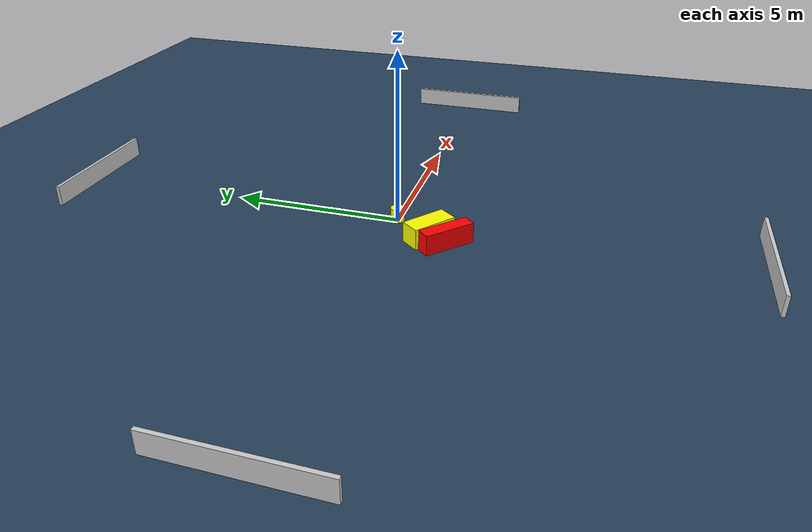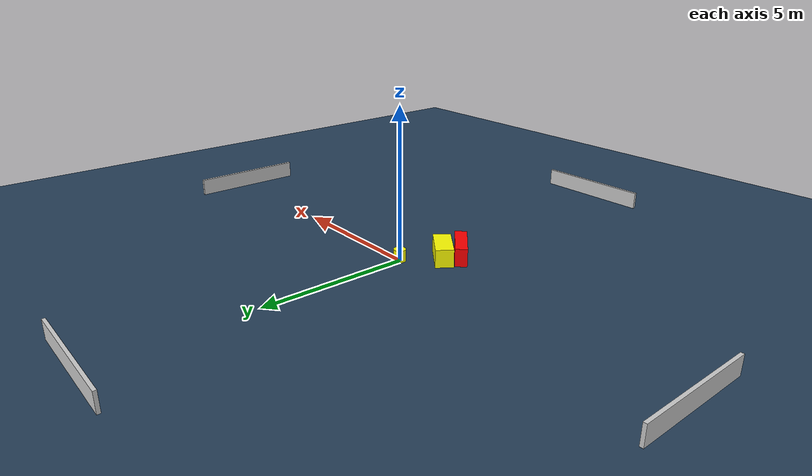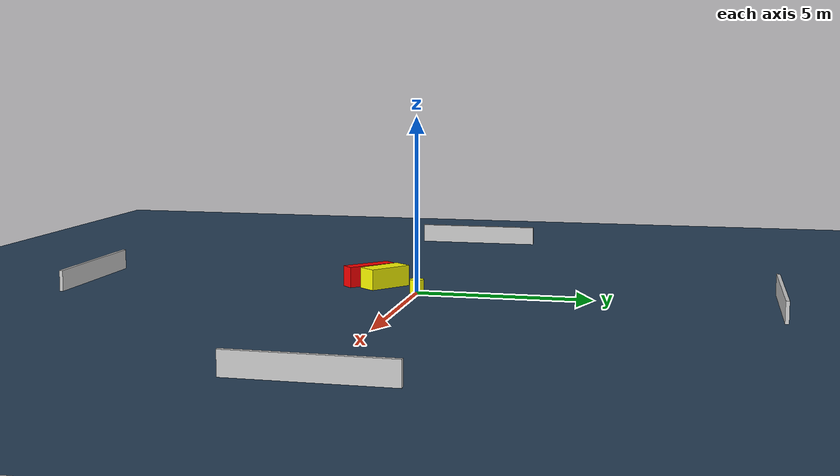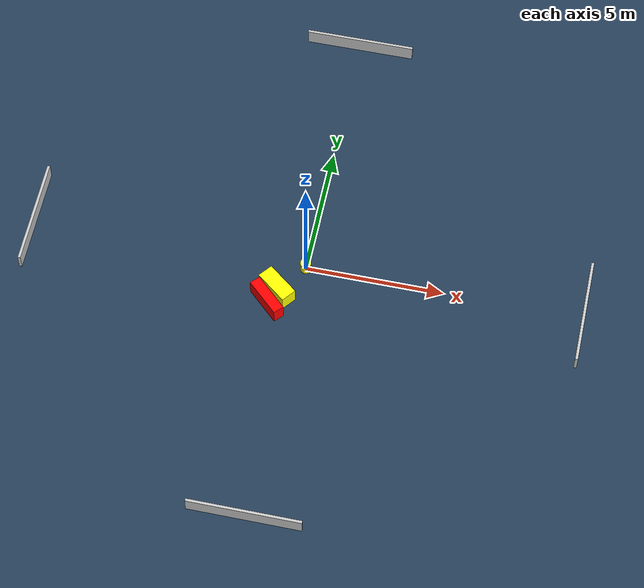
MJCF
<?xml version="1.0" ?>
<mujoco model="generated_environment">
  <option timestep="0.01" integrator="RK4" cone="elliptic"/>
  <default>
    <geom density="1"/>
  </default>
  <asset>
    <texture builtin="gradient" height="3072" name="skybox" rgb1="0.3 0.5 0.7" rgb2="0 0 0" type="skybox" width="512"/>
    <texture builtin="checker" height="300" name="groundplane" rgb1="0.2 0.3 0.4" rgb2="0.1 0.2 0.3" type="2d" width="300"/>
    <material name="groundplane" reflectance="0.2" texrepeat="5 5" texture="groundplane"/>
  </asset>
  <worldbody>
    <light dir="0 0 -1" directional="true" pos="0 0 1.5"/>
    <geom condim="3" friction="0.5 0.005 0.001" material="groundplane" name="floor" pos="0 0 0" size="0 0 0.05" type="plane"/>
    <body name="walls">
      <geom name="wall_1" condim="4" pos="-10.0 0.0 0.3" rgba="0.800000011920929 0.800000011920929 0.800000011920929 1.0" size="0.05 2.0 0.3" type="box"/>
      <geom name="wall_2" condim="4" pos="10.0 0.0 0.3" rgba="0.800000011920929 0.800000011920929 0.800000011920929 1.0" size="0.05 2.0 0.3" type="box"/>
      <geom name="wall_3" condim="4" pos="0.0 -10.0 0.3" rgba="0.800000011920929 0.800000011920929 0.800000011920929 1.0" size="2.0 0.05 0.3" type="box"/>
      <geom name="wall_4" condim="4" pos="0.0 10.0 0.3" rgba="0.800000011920929 0.800000011920929 0.800000011920929 1.0" size="2.0 0.05 0.3" type="box"/>
    </body>
    <body name="robot">
      <joint name="joint_x" type="slide" pos="0 0 0" axis="1 0 0"/>
      <joint name="joint_y" type="slide" pos="0 0 0" axis="0 1 0"/>
      <geom name="robot" type="cylinder" pos="0.0 0.0 0.2" size="0.2 0.2 0.0" mass="5.0" friction="1.0 0.005 0.0001" condim="4" rgba="1.0 1.0 0.0 1.0"/>
    </body>
    <body name="obstacle_1_movable">
      <geom name="obstacle_1_movable" condim="4" pos="-0.7993545895684022 -1.1349978967343548 0.3" euler="0 0 231.5292462297242" friction="0.0 0.005 0.001" rgba="1.0 1.0 0.0 1.0" size="0.294179515504897 0.6656603327947598 0.3" type="box" mass="0.1"/>
      <joint type="free"/>
    </body>
    <body name="obstacle_2_static">
      <geom name="obstacle_2_static" condim="4" pos="-1.0490772624908282 -1.6834306034035333 0.3" euler="0 0 316.4345423944967" friction="0.0 0.005 0.001" rgba="1.0 0.0 0.0 1.0" size="0.7509778169097516 0.20094480670289935 0.3" type="box"/>
    </body>
  </worldbody>
  <actuator>
    <motor name="actuator_x" joint="joint_x" gear="1" ctrlrange="-1 1"/>
    <motor name="actuator_y" joint="joint_y" gear="1" ctrlrange="-1 1"/>
  </actuator>
</mujoco>
